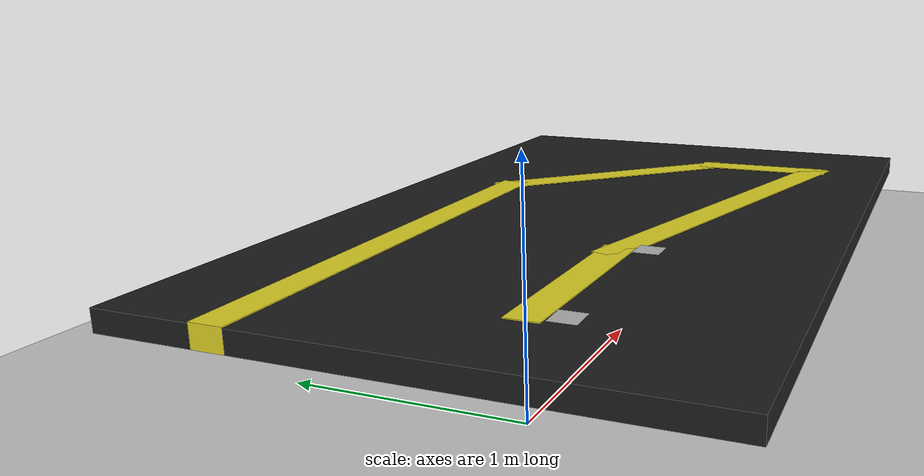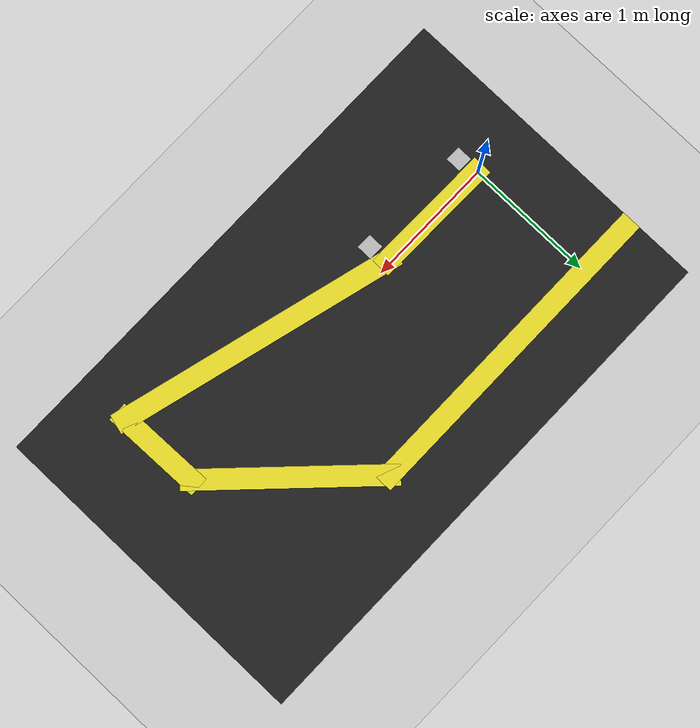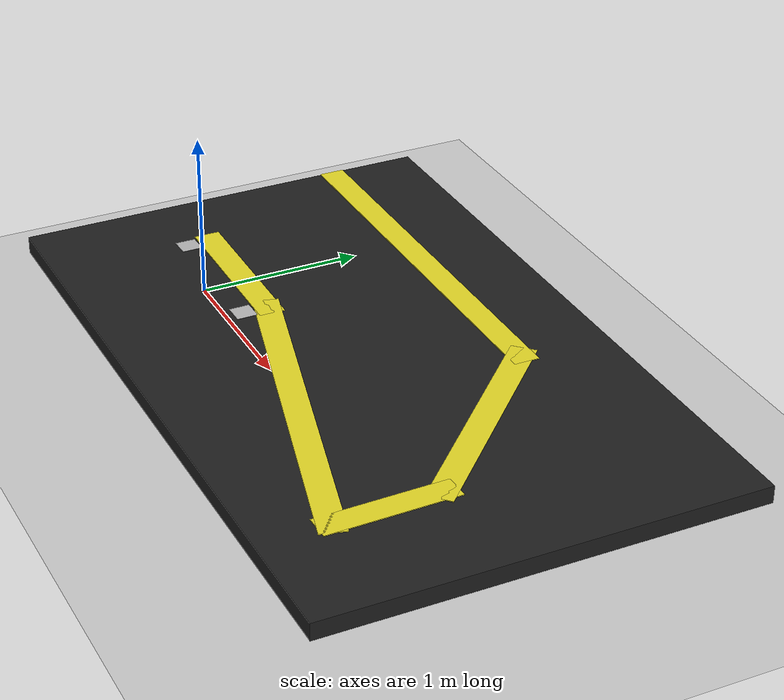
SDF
<sdf version="1.6">
 <world name="default">
  <light name="sun" type="directional">
   <pose>0 0 10 0 -0 0</pose>
   <diffuse>0.8 0.8 0.8 1</diffuse>
   <specular>0.2 0.2 0.2 1</specular>
   <attenuation>
    <range>1000</range>
    <constant>0.9</constant>
    <linear>0.01</linear>
    <quadratic>0.001</quadratic>
   </attenuation>
   <direction>-0.5 0.1 -0.9</direction>
  </light>
  <model name="ground_plane">
   <static>1</static>
   <link name="link">
    <collision name="collision">
     <geometry><plane><normal>0 0 1</normal><size>100 100</size></plane></geometry>
     <surface><friction><ode><mu>100</mu><mu2>50</mu2></ode></friction></surface>
    </collision>
    <visual name="visual">
     <cast_shadows>0</cast_shadows>
     <geometry><plane><normal>0 0 1</normal><size>100 100</size></plane></geometry>
     <material>
      <script><uri>file://media/materials/scripts/gazebo.material</uri><name>Gazebo/Grey</name></script>
     </material>
    </visual>
   </link>
  </model>
  <gravity>0 0 -9.8</gravity>
  <magnetic_field>6e-06 2.3e-05 -4.2e-05</magnetic_field>
  <atmosphere type="adiabatic"/>
  <physics name="default_physics" default="0" type="ode">
   <max_step_size>0.001</max_step_size>
   <real_time_factor>1</real_time_factor>
   <real_time_update_rate>1000</real_time_update_rate>
  </physics>
  <scene><ambient>0.4 0.4 0.4 1</ambient><background>0.7 0.7 0.7 1</background><shadows>1</shadows></scene>
  <audio><device>default</device></audio>
  <spherical_coordinates>
   <surface_model>EARTH_WGS84</surface_model>
   <latitude_deg>0</latitude_deg>
   <longitude_deg>0</longitude_deg>
   <elevation>0</elevation>
   <heading_deg>0</heading_deg>
  </spherical_coordinates>
  <model name="pista?">
   <pose>1.60902 0.315581 0.281328 0 -0 0</pose>
   <link name="Floor_4">
    <collision name="Floor_4_Collision">
     <geometry><box><size>4.03987 2.5 0.1</size></box></geometry>
     <pose>0 0 0.05 0 -0 0</pose>
    </collision>
    <visual name="Floor_4_Visual">
     <pose>0 0 0.05 0 -0 0</pose>
     <geometry><box><size>4.03987 2.5 0.1</size></box></geometry>
     <material>
      <script><uri>file://media/materials/scripts/gazebo.material</uri><name>Gazebo/Black</name></script>
      <ambient>0 0 0 0</ambient>
     </material>
     <meta><layer>1</layer></meta>
    </visual>
    <pose>0 0 0.001 0 -0 0</pose>
   </link>
   <link name="Wall_0">
    <collision name="Wall_0_Collision">
     <geometry><box><size>2.5 0.15 0.001</size></box></geometry>
     <pose>0 0 0.0005 0 -0 0</pose>
    </collision>
    <visual name="Wall_0_Visual">
     <pose>0 0 0.0005 0 -0 0</pose>
     <geometry><box><size>2.5 0.15 0.001</size></box></geometry>
     <material>
      <script><uri>file://media/materials/scripts/gazebo.material</uri><name>Gazebo/Black</name></script>
      <ambient>0 0 0 0</ambient>
     </material>
     <meta><layer>0</layer></meta>
    </visual>
    <pose>-1.905 0 0 0 -0 -1.5708</pose>
   </link>
   <link name="Wall_1">
    <collision name="Wall_1_Collision">
     <geometry><box><size>4 0.15 0.001</size></box></geometry>
     <pose>0 0 0.0005 0 -0 0</pose>
    </collision>
    <visual name="Wall_1_Visual">
     <pose>0 0 0.0005 0 -0 0</pose>
     <geometry><box><size>4 0.15 0.001</size></box></geometry>
     <material>
      <script><uri>file://media/materials/scripts/gazebo.material</uri><name>Gazebo/Black</name></script>
      <ambient>0 0 0 0</ambient>
     </material>
     <meta><layer>0</layer></meta>
    </visual>
    <pose>0.02 -1.175 0 0 -0 0</pose>
   </link>
   <link name="Wall_2">
    <collision name="Wall_2_Collision">
     <geometry><box><size>2.5 0.15 0.001</size></box></geometry>
     <pose>0 0 0.0005 0 -0 0</pose>
    </collision>
    <visual name="Wall_2_Visual">
     <pose>0 0 0.0005 0 -0 0</pose>
     <geometry><box><size>2.5 0.15 0.001</size></box></geometry>
     <material>
      <script><uri>file://media/materials/scripts/gazebo.material</uri><name>Gazebo/Black</name></script>
      <ambient>0 0 0 0</ambient>
     </material>
     <meta><layer>0</layer></meta>
    </visual>
    <pose>1.945 0 0 0 -0 1.5708</pose>
   </link>
   <link name="Wall_3">
    <collision name="Wall_3_Collision">
     <geometry><box><size>4 0.15 0.001</size></box></geometry>
     <pose>0 0 0.0005 0 -0 0</pose>
    </collision>
    <visual name="Wall_3_Visual">
     <pose>0 0 0.0005 0 -0 0</pose>
     <geometry><box><size>4 0.15 0.001</size></box></geometry>
     <material>
      <script><uri>file://media/materials/scripts/gazebo.material</uri><name>Gazebo/Black</name></script>
      <ambient>0 0 0 0</ambient>
     </material>
     <meta><layer>0</layer></meta>
    </visual>
    <pose>0.02 1.175 0 0 -0 3.14159</pose>
   </link>
   <link name="Wall_37">
    <collision name="Wall_37_Collision">
     <geometry><box><size>2.5 0.15 0.001</size></box></geometry>
     <pose>0 0 0.0005 0 -0 0</pose>
    </collision>
    <visual name="Wall_37_Visual">
     <pose>0 0 0.0005 0 -0 0</pose>
     <geometry><box><size>2.5 0.15 0.001</size></box></geometry>
     <material>
      <script><uri>file://media/materials/scripts/gazebo.material</uri><name>Gazebo/Black</name></script>
      <ambient>0 0 0 0</ambient>
     </material>
     <meta><layer>1</layer></meta>
    </visual>
    <pose>-1.905 0 0.001 0 -0 -1.5708</pose>
   </link>
   <link name="Wall_38">
    <collision name="Wall_38_Collision">
     <geometry><box><size>4 0.15 0.001</size></box></geometry>
     <pose>0 0 0.0005 0 -0 0</pose>
    </collision>
    <visual name="Wall_38_Visual">
     <pose>0 0 0.0005 0 -0 0</pose>
     <geometry><box><size>4 0.15 0.001</size></box></geometry>
     <material>
      <script><uri>file://media/materials/scripts/gazebo.material</uri><name>Gazebo/Black</name></script>
      <ambient>0 0 0 0</ambient>
     </material>
     <meta><layer>1</layer></meta>
    </visual>
    <pose>0.02 -1.175 0.001 0 -0 0</pose>
   </link>
   <link name="Wall_39">
    <collision name="Wall_39_Collision">
     <geometry><box><size>2.5 0.15 0.001</size></box></geometry>
     <pose>0 0 0.0005 0 -0 0</pose>
    </collision>
    <visual name="Wall_39_Visual">
     <pose>0 0 0.0005 0 -0 0</pose>
     <geometry><box><size>2.5 0.15 0.001</size></box></geometry>
     <material>
      <script><uri>file://media/materials/scripts/gazebo.material</uri><name>Gazebo/Black</name></script>
      <ambient>0 0 0 0</ambient>
     </material>
     <meta><layer>1</layer></meta>
    </visual>
    <pose>1.945 0 0.001 0 -0 1.5708</pose>
   </link>
   <link name="Wall_40">
    <collision name="Wall_40_Collision">
     <geometry><box><size>4 0.15 0.001</size></box></geometry>
     <pose>0 0 0.0005 0 -0 0</pose>
    </collision>
    <visual name="Wall_40_Visual">
     <pose>0 0 0.0005 0 -0 0</pose>
     <geometry><box><size>4 0.15 0.001</size></box></geometry>
     <material>
      <script><uri>file://media/materials/scripts/gazebo.material</uri><name>Gazebo/Black</name></script>
      <ambient>0 0 0 0</ambient>
     </material>
     <meta><layer>1</layer></meta>
    </visual>
    <pose>0.02 1.175 0.001 0 -0 3.14159</pose>
   </link>
   <link name="Wall_41">
    <collision name="Wall_41_Collision">
     <geometry><box><size>2.5 0.15 0.105</size></box></geometry>
     <pose>0 0 0.0525 0 -0 0</pose>
    </collision>
    <visual name="Wall_41_Visual">
     <pose>0 0 0.0525 0 -0 0</pose>
     <geometry><box><size>2.5 0.15 0.105</size></box></geometry>
     <material>
      <script><uri>file://media/materials/scripts/gazebo.material</uri><name>Gazebo/Yellow</name></script>
      <ambient>1 1 1 1</ambient>
     </material>
     <meta><layer>1</layer></meta>
    </visual>
    <pose>-0.77 0.721 0.001 0 -0 0</pose>
   </link>
   <link name="Wall_42">
    <collision name="Wall_42_Collision">
     <geometry><box><size>1.5 0.15 0.105</size></box></geometry>
     <pose>0 0 0.0525 0 -0 0</pose>
    </collision>
    <visual name="Wall_42_Visual">
     <pose>0 0 0.0525 0 -0 0</pose>
     <geometry><box><size>1.5 0.15 0.105</size></box></geometry>
     <material>
      <script><uri>file://media/materials/scripts/gazebo.material</uri><name>Gazebo/Yellow</name></script>
      <ambient>1 1 1 1</ambient>
     </material>
     <meta><layer>1</layer></meta>
    </visual>
    <pose>0.8825 0.2435 0.001 0 -0 -0.785398</pose>
   </link>
   <link name="Wall_43">
    <collision name="Wall_43_Collision">
     <geometry><box><size>0.763345 0.15 0.105</size></box></geometry>
     <pose>0 0 0.0525 0 -0 0</pose>
    </collision>
    <visual name="Wall_43_Visual">
     <pose>0 0 0.0525 0 -0 0</pose>
     <geometry><box><size>0.763345 0.15 0.105</size></box></geometry>
     <material>
      <script><uri>file://media/materials/scripts/gazebo.material</uri><name>Gazebo/Yellow</name></script>
      <ambient>1 1 1 1</ambient>
     </material>
     <meta><layer>1</layer></meta>
    </visual>
    <pose>1.3665 -0.5405 0.001 0 -0 -1.54959</pose>
   </link>
   <link name="Wall_44">
    <collision name="Wall_44_Collision">
     <geometry><box><size>2.25034 0.15 0.105</size></box></geometry>
     <pose>0 0 0.0525 0 -0 0</pose>
    </collision>
    <visual name="Wall_44_Visual">
     <pose>0 0 0.0525 0 -0 0</pose>
     <geometry><box><size>2.25034 0.15 0.105</size></box></geometry>
     <material>
      <script><uri>file://media/materials/scripts/gazebo.material</uri><name>Gazebo/Yellow</name></script>
      <ambient>1 1 1 1</ambient>
     </material>
     <meta><layer>1</layer></meta>
    </visual>
    <pose>0.3585 -0.575 0.001 0 -0 2.87964</pose>
   </link>
   <link name="Wall_45">
    <collision name="Wall_45_Collision">
     <geometry><box><size>1.0131 0.15 0.105</size></box></geometry>
     <pose>0 0 0.0525 0 -0 0</pose>
    </collision>
    <visual name="Wall_45_Visual">
     <pose>0 0 0.0525 0 -0 0</pose>
     <geometry><box><size>1.0131 0.15 0.105</size></box></geometry>
     <material>
      <script><uri>file://media/materials/scripts/gazebo.material</uri><name>Gazebo/Yellow</name></script>
      <ambient>1 1 1 1</ambient>
     </material>
     <meta><layer>1</layer></meta>
    </visual>
    <pose>-1.0875 -0.2965 0.001 0 -0 3.12653</pose>
   </link>
   <static>1</static>
  </model>
  <model name="aruco">
   <static>1</static>
   <link name="link">
    <visual name="visual">
     <geometry><mesh><uri>model://aruco/meshes/aruco.dae</uri><scale>0.24 0.24 0.24</scale></mesh></geometry>
    </visual>
   </link>
   <pose>0.039388 -0.119255 0.38555 0 1.54825 0</pose>
  </model>
  <model name="aruco2">
   <static>1</static>
   <link name="link">
    <visual name="visual">
     <geometry><mesh><uri>model://aruco2/meshes/aruco2.dae</uri><scale>0.24 0.24 0.24</scale></mesh></geometry>
    </visual>
   </link>
   <pose>0.910885 -0.139689 0.39892 3.14159 1.56861 3.14159</pose>
  </model>
 </world>
</sdf>
